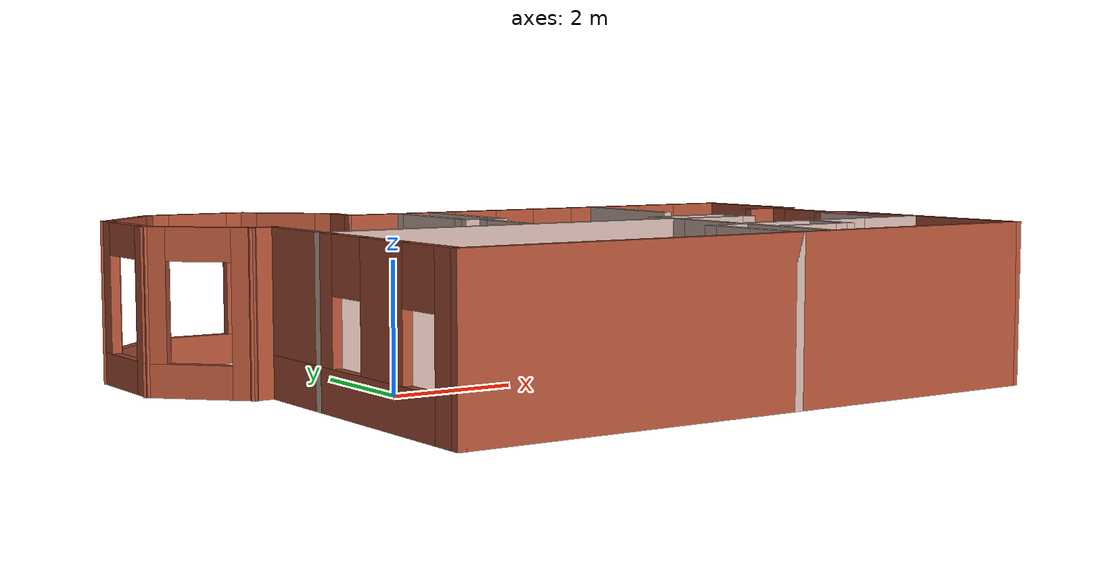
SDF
<?xml version='1.0'?>
<sdf version='1.6'>
  <model name='house'>
    <pose frame=''>2.68896 0.196904 0 0 -0 0</pose>
    <link name='Wall_0'>
      <collision name='Wall_0_Collision'>
        <geometry>
          <box>
            <size>10 0.15 2.5</size>
          </box>
        </geometry>
        <pose frame=''>0 0 1.25 0 -0 0</pose>
      </collision>
      <visual name='Wall_0_Visual'>
        <pose frame=''>0 0 1.25 0 -0 0</pose>
        <geometry>
          <box>
            <size>10 0.15 2.5</size>
          </box>
        </geometry>
        <material>
          <script>
            <uri>file://media/materials/scripts/gazebo.material</uri>
            <name>Gazebo/Bricks</name>
          </script>
          <ambient>1 1 1 1</ambient>
        </material>
        <meta>
          <layer>0</layer>
        </meta>
      </visual>
      <pose frame=''>0.726039 -4.4969 0 0 -0 0</pose>
    </link>
    <link name='Wall_1'>
      <collision name='Wall_1_Collision'>
        <geometry>
          <box>
            <size>3.75 0.15 2.5</size>
          </box>
        </geometry>
        <pose frame=''>0 0 1.25 0 -0 0</pose>
      </collision>
      <visual name='Wall_1_Visual'>
        <pose frame=''>0 0 1.25 0 -0 0</pose>
        <geometry>
          <box>
            <size>3.75 0.15 2.5</size>
          </box>
        </geometry>
        <material>
          <script>
            <uri>file://media/materials/scripts/gazebo.material</uri>
            <name>Gazebo/Bricks</name>
          </script>
          <ambient>1 1 1 1</ambient>
        </material>
        <meta>
          <layer>0</layer>
        </meta>
      </visual>
      <pose frame=''>5.65104 -2.6969 0 0 -0 1.5708</pose>
    </link>
    <link name='Wall_10'>
      <pose frame=''>1.96104 -2.4319 0 0 -0 1.5708</pose>
      <visual name='Wall_10_Visual_0'>
        <pose frame=''>-0.9125 0 1.25 0 -0 0</pose>
        <geometry>
          <box>
            <size>2.415 0.15 2.5</size>
          </box>
        </geometry>
        <material>
          <script>
            <uri>file://media/materials/scripts/gazebo.material</uri>
            <name>Gazebo/Grey</name>
          </script>
          <ambient>0.760784 0.662745 0.627451 1</ambient>
        </material>
        <meta>
          <layer>0</layer>
        </meta>
      </visual>
      <collision name='Wall_10_Collision_0'>
        <geometry>
          <box>
            <size>2.415 0.15 2.5</size>
          </box>
        </geometry>
        <pose frame=''>-0.9125 0 1.25 0 -0 0</pose>
      </collision>
      <visual name='Wall_10_Visual_1'>
        <pose frame=''>1.6575 0 1.25 0 -0 0</pose>
        <geometry>
          <box>
            <size>0.925 0.15 2.5</size>
          </box>
        </geometry>
        <material>
          <script>
            <uri>file://media/materials/scripts/gazebo.material</uri>
            <name>Gazebo/Grey</name>
          </script>
          <ambient>0.760784 0.662745 0.627451 1</ambient>
        </material>
        <meta>
          <layer>0</layer>
        </meta>
      </visual>
      <collision name='Wall_10_Collision_1'>
        <geometry>
          <box>
            <size>0.925 0.15 2.5</size>
          </box>
        </geometry>
        <pose frame=''>1.6575 0 1.25 0 -0 0</pose>
      </collision>
      <visual name='Wall_10_Visual_2'>
        <pose frame=''>0.745 0 2.25 0 -0 0</pose>
        <geometry>
          <box>
            <size>0.9 0.15 0.5</size>
          </box>
        </geometry>
        <material>
          <script>
            <uri>file://media/materials/scripts/gazebo.material</uri>
            <name>Gazebo/Grey</name>
          </script>
          <ambient>0.760784 0.662745 0.627451 1</ambient>
        </material>
        <meta>
          <layer>0</layer>
        </meta>
      </visual>
      <collision name='Wall_10_Collision_2'>
        <geometry>
          <box>
            <size>0.9 0.15 0.5</size>
          </box>
        </geometry>
        <pose frame=''>0.745 0 2.25 0 -0 0</pose>
      </collision>
    </link>
    <link name='Wall_12'>
      <collision name='Wall_12_Collision'>
        <geometry>
          <box>
            <size>0.74 0.15 2.5</size>
          </box>
        </geometry>
        <pose frame=''>0 0 1.25 0 -0 0</pose>
      </collision>
      <visual name='Wall_12_Visual'>
        <pose frame=''>0 0 1.25 0 -0 0</pose>
        <geometry>
          <box>
            <size>0.74 0.15 2.5</size>
          </box>
        </geometry>
        <material>
          <script>
            <uri>file://media/materials/scripts/gazebo.material</uri>
            <name>Gazebo/Grey</name>
          </script>
          <ambient>0.760784 0.662745 0.627451 1</ambient>
        </material>
        <meta>
          <layer>0</layer>
        </meta>
      </visual>
      <pose frame=''>3.40104 -0.681904 0 0 -0 -1.5708</pose>
    </link>
    <link name='Wall_13'>
      <pose frame=''>2.72604 -0.976904 0 0 -0 3.14159</pose>
      <visual name='Wall_13_Visual_0'>
        <pose frame=''>-0.625 0 1.25 0 -0 0</pose>
        <geometry>
          <box>
            <size>0.25 0.15 2.5</size>
          </box>
        </geometry>
        <material>
          <script>
            <uri>file://media/materials/scripts/gazebo.material</uri>
            <name>Gazebo/Grey</name>
          </script>
          <ambient>0.760784 0.662745 0.627451 1</ambient>
        </material>
        <meta>
          <layer>0</layer>
        </meta>
      </visual>
      <collision name='Wall_13_Collision_0'>
        <geometry>
          <box>
            <size>0.25 0.15 2.5</size>
          </box>
        </geometry>
        <pose frame=''>-0.625 0 1.25 0 -0 0</pose>
      </collision>
      <visual name='Wall_13_Visual_1'>
        <pose frame=''>0.655 0 1.25 0 -0 0</pose>
        <geometry>
          <box>
            <size>0.19 0.15 2.5</size>
          </box>
        </geometry>
        <material>
          <script>
            <uri>file://media/materials/scripts/gazebo.material</uri>
            <name>Gazebo/Grey</name>
          </script>
          <ambient>0.760784 0.662745 0.627451 1</ambient>
        </material>
        <meta>
          <layer>0</layer>
        </meta>
      </visual>
      <collision name='Wall_13_Collision_1'>
        <geometry>
          <box>
            <size>0.19 0.15 2.5</size>
          </box>
        </geometry>
        <pose frame=''>0.655 0 1.25 0 -0 0</pose>
      </collision>
      <visual name='Wall_13_Visual_2'>
        <pose frame=''>0.03 0 2.25 0 -0 0</pose>
        <geometry>
          <box>
            <size>1.06 0.15 0.5</size>
          </box>
        </geometry>
        <material>
          <script>
            <uri>file://media/materials/scripts/gazebo.material</uri>
            <name>Gazebo/Grey</name>
          </script>
          <ambient>0.760784 0.662745 0.627451 1</ambient>
        </material>
        <meta>
          <layer>0</layer>
        </meta>
      </visual>
      <collision name='Wall_13_Collision_2'>
        <geometry>
          <box>
            <size>1.06 0.15 0.5</size>
          </box>
        </geometry>
        <pose frame=''>0.03 0 2.25 0 -0 0</pose>
      </collision>
    </link>
    <link name='Wall_15'>
      <collision name='Wall_15_Collision'>
        <geometry>
          <box>
            <size>1.5 0.15 2.5</size>
          </box>
        </geometry>
        <pose frame=''>0 0 1.25 0 -0 0</pose>
      </collision>
      <visual name='Wall_15_Visual'>
        <pose frame=''>0 0 1.25 0 -0 0</pose>
        <geometry>
          <box>
            <size>1.5 0.15 2.5</size>
          </box>
        </geometry>
        <material>
          <script>
            <uri>file://media/materials/scripts/gazebo.material</uri>
            <name>Gazebo/Grey</name>
          </script>
          <ambient>0.760784 0.662745 0.627451 1</ambient>
        </material>
        <meta>
          <layer>0</layer>
        </meta>
      </visual>
      <pose frame=''>2.72604 -0.386904 0 0 -0 3.14159</pose>
    </link>
    <link name='Wall_17'>
      <collision name='Wall_17_Collision'>
        <geometry>
          <box>
            <size>0.960062 0.15 2.5</size>
          </box>
        </geometry>
        <pose frame=''>0 0 1.25 0 -0 0</pose>
      </collision>
      <visual name='Wall_17_Visual'>
        <pose frame=''>0 0 1.25 0 -0 0</pose>
        <geometry>
          <box>
            <size>0.960062 0.15 2.5</size>
          </box>
        </geometry>
        <material>
          <script>
            <uri>file://media/materials/scripts/gazebo.material</uri>
            <name>Gazebo/Grey</name>
          </script>
          <ambient>0.760784 0.662745 0.627451 1</ambient>
        </material>
        <meta>
          <layer>0</layer>
        </meta>
      </visual>
      <pose frame=''>3.37104 -2.8719 0 0 -0 -1.5708</pose>
    </link>
    <link name='Wall_18'>
      <pose frame=''>2.69604 -3.2769 0 0 -0 3.14159</pose>
      <visual name='Wall_18_Visual_0'>
        <pose frame=''>-0.5675 0 1.25 0 -0 0</pose>
        <geometry>
          <box>
            <size>0.365 0.15 2.5</size>
          </box>
        </geometry>
        <material>
          <script>
            <uri>file://media/materials/scripts/gazebo.material</uri>
            <name>Gazebo/Grey</name>
          </script>
          <ambient>0.760784 0.662745 0.627451 1</ambient>
        </material>
        <meta>
          <layer>0</layer>
        </meta>
      </visual>
      <collision name='Wall_18_Collision_0'>
        <geometry>
          <box>
            <size>0.365 0.15 2.5</size>
          </box>
        </geometry>
        <pose frame=''>-0.5675 0 1.25 0 -0 0</pose>
      </collision>
      <visual name='Wall_18_Visual_1'>
        <pose frame=''>0.6325 0 1.25 0 -0 0</pose>
        <geometry>
          <box>
            <size>0.235 0.15 2.5</size>
          </box>
        </geometry>
        <material>
          <script>
            <uri>file://media/materials/scripts/gazebo.material</uri>
            <name>Gazebo/Grey</name>
          </script>
          <ambient>0.760784 0.662745 0.627451 1</ambient>
        </material>
        <meta>
          <layer>0</layer>
        </meta>
      </visual>
      <collision name='Wall_18_Collision_1'>
        <geometry>
          <box>
            <size>0.235 0.15 2.5</size>
          </box>
        </geometry>
        <pose frame=''>0.6325 0 1.25 0 -0 0</pose>
      </collision>
      <visual name='Wall_18_Visual_2'>
        <pose frame=''>0.065 0 2.25 0 -0 0</pose>
        <geometry>
          <box>
            <size>0.9 0.15 0.5</size>
          </box>
        </geometry>
        <material>
          <script>
            <uri>file://media/materials/scripts/gazebo.material</uri>
            <name>Gazebo/Grey</name>
          </script>
          <ambient>0.760784 0.662745 0.627451 1</ambient>
        </material>
        <meta>
          <layer>0</layer>
        </meta>
      </visual>
      <collision name='Wall_18_Collision_2'>
        <geometry>
          <box>
            <size>0.9 0.15 0.5</size>
          </box>
        </geometry>
        <pose frame=''>0.065 0 2.25 0 -0 0</pose>
      </collision>
    </link>
    <link name='Wall_2'>
      <collision name='Wall_2_Collision'>
        <geometry>
          <box>
            <size>0.75 0.15 2.5</size>
          </box>
        </geometry>
        <pose frame=''>0 0 1.25 0 -0 0</pose>
      </collision>
      <visual name='Wall_2_Visual'>
        <pose frame=''>0 0 1.25 0 -0 0</pose>
        <geometry>
          <box>
            <size>0.75 0.15 2.5</size>
          </box>
        </geometry>
        <material>
          <script>
            <uri>file://media/materials/scripts/gazebo.material</uri>
            <name>Gazebo/Bricks</name>
          </script>
          <ambient>1 1 1 1</ambient>
        </material>
        <meta>
          <layer>0</layer>
        </meta>
      </visual>
      <pose frame=''>5.35104 -0.896904 0 0 -0 3.14159</pose>
    </link>
    <link name='Wall_20'>
      <pose frame=''>1.28104 -3.5719 0 0 -0 1.5708</pose>
      <visual name='Wall_20_Visual_0'>
        <pose frame=''>-0.85 0 1.25 0 -0 0</pose>
        <geometry>
          <box>
            <size>0.3 0.15 2.5</size>
          </box>
        </geometry>
        <material>
          <script>
            <uri>file://media/materials/scripts/gazebo.material</uri>
            <name>Gazebo/Grey</name>
          </script>
          <ambient>0.760784 0.662745 0.627451 1</ambient>
        </material>
        <meta>
          <layer>0</layer>
        </meta>
      </visual>
      <collision name='Wall_20_Collision_0'>
        <geometry>
          <box>
            <size>0.3 0.15 2.5</size>
          </box>
        </geometry>
        <pose frame=''>-0.85 0 1.25 0 -0 0</pose>
      </collision>
      <visual name='Wall_20_Visual_1'>
        <pose frame=''>0.87 0 1.25 0 -0 0</pose>
        <geometry>
          <box>
            <size>0.26 0.15 2.5</size>
          </box>
        </geometry>
        <material>
          <script>
            <uri>file://media/materials/scripts/gazebo.material</uri>
            <name>Gazebo/Grey</name>
          </script>
          <ambient>0.760784 0.662745 0.627451 1</ambient>
        </material>
        <meta>
          <layer>0</layer>
        </meta>
      </visual>
      <collision name='Wall_20_Collision_1'>
        <geometry>
          <box>
            <size>0.26 0.15 2.5</size>
          </box>
        </geometry>
        <pose frame=''>0.87 0 1.25 0 -0 0</pose>
      </collision>
      <visual name='Wall_20_Visual_2'>
        <pose frame=''>0.02 0 2.25 0 -0 0</pose>
        <geometry>
          <box>
            <size>1.44 0.15 0.5</size>
          </box>
        </geometry>
        <material>
          <script>
            <uri>file://media/materials/scripts/gazebo.material</uri>
            <name>Gazebo/Grey</name>
          </script>
          <ambient>0.760784 0.662745 0.627451 1</ambient>
        </material>
        <meta>
          <layer>0</layer>
        </meta>
      </visual>
      <collision name='Wall_20_Collision_2'>
        <geometry>
          <box>
            <size>1.44 0.15 0.5</size>
          </box>
        </geometry>
        <pose frame=''>0.02 0 2.25 0 -0 0</pose>
      </collision>
    </link>
    <link name='Wall_21'>
      <collision name='Wall_21_Collision'>
        <geometry>
          <box>
            <size>0.79 0.15 2.5</size>
          </box>
        </geometry>
        <pose frame=''>0 0 1.25 0 -0 0</pose>
      </collision>
      <visual name='Wall_21_Visual'>
        <pose frame=''>0 0 1.25 0 -0 0</pose>
        <geometry>
          <box>
            <size>0.79 0.15 2.5</size>
          </box>
        </geometry>
        <material>
          <script>
            <uri>file://media/materials/scripts/gazebo.material</uri>
            <name>Gazebo/Grey</name>
          </script>
          <ambient>0.760784 0.662745 0.627451 1</ambient>
        </material>
        <meta>
          <layer>0</layer>
        </meta>
      </visual>
      <pose frame=''>1.60104 -2.6469 0 0 -0 0</pose>
    </link>
    <link name='Wall_23'>
      <pose frame=''>-4.19896 -1.9469 0 0 -0 1.5708</pose>
      <visual name='Wall_23_Visual_0'>
        <pose frame=''>-2.3575 0 1.25 0 -0 0</pose>
        <geometry>
          <box>
            <size>0.535 0.15 2.5</size>
          </box>
        </geometry>
        <material>
          <script>
            <uri>file://media/materials/scripts/gazebo.material</uri>
            <name>Gazebo/Bricks</name>
          </script>
          <ambient>1 1 1 1</ambient>
        </material>
        <meta>
          <layer>0</layer>
        </meta>
      </visual>
      <collision name='Wall_23_Collision_0'>
        <geometry>
          <box>
            <size>0.535 0.15 2.5</size>
          </box>
        </geometry>
        <pose frame=''>-2.3575 0 1.25 0 -0 0</pose>
      </collision>
      <visual name='Wall_23_Visual_1'>
        <pose frame=''>0.2675 0 0.325 0 -0 0</pose>
        <geometry>
          <box>
            <size>4.715 0.15 0.65</size>
          </box>
        </geometry>
        <material>
          <script>
            <uri>file://media/materials/scripts/gazebo.material</uri>
            <name>Gazebo/Bricks</name>
          </script>
          <ambient>1 1 1 1</ambient>
        </material>
        <meta>
          <layer>0</layer>
        </meta>
      </visual>
      <collision name='Wall_23_Collision_1'>
        <geometry>
          <box>
            <size>4.715 0.15 0.65</size>
          </box>
        </geometry>
        <pose frame=''>0.2675 0 0.325 0 -0 0</pose>
      </collision>
      <visual name='Wall_23_Visual_2'>
        <pose frame=''>-0.73 0 1.575 0 -0 0</pose>
        <geometry>
          <box>
            <size>1.12 0.15 1.85</size>
          </box>
        </geometry>
        <material>
          <script>
            <uri>file://media/materials/scripts/gazebo.material</uri>
            <name>Gazebo/Bricks</name>
          </script>
          <ambient>1 1 1 1</ambient>
        </material>
        <meta>
          <layer>0</layer>
        </meta>
      </visual>
      <collision name='Wall_23_Collision_2'>
        <geometry>
          <box>
            <size>1.12 0.15 1.85</size>
          </box>
        </geometry>
        <pose frame=''>-0.73 0 1.575 0 -0 0</pose>
      </collision>
      <visual name='Wall_23_Visual_3'>
        <pose frame=''>1.6275 0 1.575 0 -0 0</pose>
        <geometry>
          <box>
            <size>1.995 0.15 1.85</size>
          </box>
        </geometry>
        <material>
          <script>
            <uri>file://media/materials/scripts/gazebo.material</uri>
            <name>Gazebo/Bricks</name>
          </script>
          <ambient>1 1 1 1</ambient>
        </material>
        <meta>
          <layer>0</layer>
        </meta>
      </visual>
      <collision name='Wall_23_Collision_3'>
        <geometry>
          <box>
            <size>1.995 0.15 1.85</size>
          </box>
        </geometry>
        <pose frame=''>1.6275 0 1.575 0 -0 0</pose>
      </collision>
      <visual name='Wall_23_Visual_4'>
        <pose frame=''>-1.69 0 2.075 0 -0 0</pose>
        <geometry>
          <box>
            <size>0.8 0.15 0.85</size>
          </box>
        </geometry>
        <material>
          <script>
            <uri>file://media/materials/scripts/gazebo.material</uri>
            <name>Gazebo/Bricks</name>
          </script>
          <ambient>1 1 1 1</ambient>
        </material>
        <meta>
          <layer>0</layer>
        </meta>
      </visual>
      <collision name='Wall_23_Collision_4'>
        <geometry>
          <box>
            <size>0.8 0.15 0.85</size>
          </box>
        </geometry>
        <pose frame=''>-1.69 0 2.075 0 -0 0</pose>
      </collision>
      <visual name='Wall_23_Visual_5'>
        <pose frame=''>0.23 0 2.075 0 -0 0</pose>
        <geometry>
          <box>
            <size>0.8 0.15 0.85</size>
          </box>
        </geometry>
        <material>
          <script>
            <uri>file://media/materials/scripts/gazebo.material</uri>
            <name>Gazebo/Bricks</name>
          </script>
          <ambient>1 1 1 1</ambient>
        </material>
        <meta>
          <layer>0</layer>
        </meta>
      </visual>
      <collision name='Wall_23_Collision_5'>
        <geometry>
          <box>
            <size>0.8 0.15 0.85</size>
          </box>
        </geometry>
        <pose frame=''>0.23 0 2.075 0 -0 0</pose>
      </collision>
    </link>
    <link name='Wall_24'>
      <collision name='Wall_24_Collision'>
        <geometry>
          <box>
            <size>0.5 0.15 2.5</size>
          </box>
        </geometry>
        <pose frame=''>0 0 1.25 0 -0 0</pose>
      </collision>
      <visual name='Wall_24_Visual'>
        <pose frame=''>0 0 1.25 0 -0 0</pose>
        <geometry>
          <box>
            <size>0.5 0.15 2.5</size>
          </box>
        </geometry>
        <material>
          <script>
            <uri>file://media/materials/scripts/gazebo.material</uri>
            <name>Gazebo/Bricks</name>
          </script>
          <ambient>1 1 1 1</ambient>
        </material>
        <meta>
          <layer>0</layer>
        </meta>
      </visual>
      <pose frame=''>-4.37396 0.603096 0 0 -0 3.14159</pose>
    </link>
    <link name='Wall_25'>
      <pose frame=''>-5.11465 1.16878 0 0 -0 2.35619</pose>
      <visual name='Wall_25_Visual_0'>
        <pose frame=''>-0.687985 0 1.25 0 -0 0</pose>
        <geometry>
          <box>
            <size>0.374031 0.15 2.5</size>
          </box>
        </geometry>
        <material>
          <script>
            <uri>file://media/materials/scripts/gazebo.material</uri>
            <name>Gazebo/Bricks</name>
          </script>
          <ambient>1 1 1 1</ambient>
        </material>
        <meta>
          <layer>0</layer>
        </meta>
      </visual>
      <collision name='Wall_25_Collision_0'>
        <geometry>
          <box>
            <size>0.374031 0.15 2.5</size>
          </box>
        </geometry>
        <pose frame=''>-0.687985 0 1.25 0 -0 0</pose>
      </collision>
      <visual name='Wall_25_Visual_1'>
        <pose frame=''>0.187015 0 0.25 0 -0 0</pose>
        <geometry>
          <box>
            <size>1.37597 0.15 0.5</size>
          </box>
        </geometry>
        <material>
          <script>
            <uri>file://media/materials/scripts/gazebo.material</uri>
            <name>Gazebo/Bricks</name>
          </script>
          <ambient>1 1 1 1</ambient>
        </material>
        <meta>
          <layer>0</layer>
        </meta>
      </visual>
      <collision name='Wall_25_Collision_1'>
        <geometry>
          <box>
            <size>1.37597 0.15 0.5</size>
          </box>
        </geometry>
        <pose frame=''>0.187015 0 0.25 0 -0 0</pose>
      </collision>
      <visual name='Wall_25_Visual_2'>
        <pose frame=''>0.687015 0 1.5 0 -0 0</pose>
        <geometry>
          <box>
            <size>0.375969 0.15 2</size>
          </box>
        </geometry>
        <material>
          <script>
            <uri>file://media/materials/scripts/gazebo.material</uri>
            <name>Gazebo/Bricks</name>
          </script>
          <ambient>1 1 1 1</ambient>
        </material>
        <meta>
          <layer>0</layer>
        </meta>
      </visual>
      <collision name='Wall_25_Collision_2'>
        <geometry>
          <box>
            <size>0.375969 0.15 2</size>
          </box>
        </geometry>
        <pose frame=''>0.687015 0 1.5 0 -0 0</pose>
      </collision>
      <visual name='Wall_25_Visual_3'>
        <pose frame=''>-0.000969 0 2.25 0 -0 0</pose>
        <geometry>
          <box>
            <size>1 0.15 0.5</size>
          </box>
        </geometry>
        <material>
          <script>
            <uri>file://media/materials/scripts/gazebo.material</uri>
            <name>Gazebo/Bricks</name>
          </script>
          <ambient>1 1 1 1</ambient>
        </material>
        <meta>
          <layer>0</layer>
        </meta>
      </visual>
      <collision name='Wall_25_Collision_3'>
        <geometry>
          <box>
            <size>1 0.15 0.5</size>
          </box>
        </geometry>
        <pose frame=''>-0.000969 0 2.25 0 -0 0</pose>
      </collision>
    </link>
    <link name='Wall_26'>
      <pose frame=''>-5.68033 2.53447 0 0 -0 1.5708</pose>
      <visual name='Wall_26_Visual_0'>
        <pose frame=''>-0.688185 0 1.25 0 -0 0</pose>
        <geometry>
          <box>
            <size>0.373629 0.15 2.5</size>
          </box>
        </geometry>
        <material>
          <script>
            <uri>file://media/materials/scripts/gazebo.material</uri>
            <name>Gazebo/Bricks</name>
          </script>
          <ambient>1 1 1 1</ambient>
        </material>
        <meta>
          <layer>0</layer>
        </meta>
      </visual>
      <collision name='Wall_26_Collision_0'>
        <geometry>
          <box>
            <size>0.373629 0.15 2.5</size>
          </box>
        </geometry>
        <pose frame=''>-0.688185 0 1.25 0 -0 0</pose>
      </collision>
      <visual name='Wall_26_Visual_1'>
        <pose frame=''>0.186815 0 0.25 0 -0 0</pose>
        <geometry>
          <box>
            <size>1.37637 0.15 0.5</size>
          </box>
        </geometry>
        <material>
          <script>
            <uri>file://media/materials/scripts/gazebo.material</uri>
            <name>Gazebo/Bricks</name>
          </script>
          <ambient>1 1 1 1</ambient>
        </material>
        <meta>
          <layer>0</layer>
        </meta>
      </visual>
      <collision name='Wall_26_Collision_1'>
        <geometry>
          <box>
            <size>1.37637 0.15 0.5</size>
          </box>
        </geometry>
        <pose frame=''>0.186815 0 0.25 0 -0 0</pose>
      </collision>
      <visual name='Wall_26_Visual_2'>
        <pose frame=''>0.686815 0 1.5 0 -0 0</pose>
        <geometry>
          <box>
            <size>0.376371 0.15 2</size>
          </box>
        </geometry>
        <material>
          <script>
            <uri>file://media/materials/scripts/gazebo.material</uri>
            <name>Gazebo/Bricks</name>
          </script>
          <ambient>1 1 1 1</ambient>
        </material>
        <meta>
          <layer>0</layer>
        </meta>
      </visual>
      <collision name='Wall_26_Collision_2'>
        <geometry>
          <box>
            <size>0.376371 0.15 2</size>
          </box>
        </geometry>
        <pose frame=''>0.686815 0 1.5 0 -0 0</pose>
      </collision>
      <visual name='Wall_26_Visual_3'>
        <pose frame=''>-0.001371 0 2.25 0 -0 0</pose>
        <geometry>
          <box>
            <size>1 0.15 0.5</size>
          </box>
        </geometry>
        <material>
          <script>
            <uri>file://media/materials/scripts/gazebo.material</uri>
            <name>Gazebo/Bricks</name>
          </script>
          <ambient>1 1 1 1</ambient>
        </material>
        <meta>
          <layer>0</layer>
        </meta>
      </visual>
      <collision name='Wall_26_Collision_3'>
        <geometry>
          <box>
            <size>1 0.15 0.5</size>
          </box>
        </geometry>
        <pose frame=''>-0.001371 0 2.25 0 -0 0</pose>
      </collision>
    </link>
    <link name='Wall_27'>
      <pose frame=''>-5.11465 3.90015 0 0 -0 0.785398</pose>
      <visual name='Wall_27_Visual_0'>
        <pose frame=''>-0.687985 0 1.25 0 -0 0</pose>
        <geometry>
          <box>
            <size>0.37403 0.15 2.5</size>
          </box>
        </geometry>
        <material>
          <script>
            <uri>file://media/materials/scripts/gazebo.material</uri>
            <name>Gazebo/Bricks</name>
          </script>
          <ambient>1 1 1 1</ambient>
        </material>
        <meta>
          <layer>0</layer>
        </meta>
      </visual>
      <collision name='Wall_27_Collision_0'>
        <geometry>
          <box>
            <size>0.37403 0.15 2.5</size>
          </box>
        </geometry>
        <pose frame=''>-0.687985 0 1.25 0 -0 0</pose>
      </collision>
      <visual name='Wall_27_Visual_1'>
        <pose frame=''>0.187015 0 0.25 0 -0 0</pose>
        <geometry>
          <box>
            <size>1.37597 0.15 0.5</size>
          </box>
        </geometry>
        <material>
          <script>
            <uri>file://media/materials/scripts/gazebo.material</uri>
            <name>Gazebo/Bricks</name>
          </script>
          <ambient>1 1 1 1</ambient>
        </material>
        <meta>
          <layer>0</layer>
        </meta>
      </visual>
      <collision name='Wall_27_Collision_1'>
        <geometry>
          <box>
            <size>1.37597 0.15 0.5</size>
          </box>
        </geometry>
        <pose frame=''>0.187015 0 0.25 0 -0 0</pose>
      </collision>
      <visual name='Wall_27_Visual_2'>
        <pose frame=''>0.687015 0 1.5 0 -0 0</pose>
        <geometry>
          <box>
            <size>0.37597 0.15 2</size>
          </box>
        </geometry>
        <material>
          <script>
            <uri>file://media/materials/scripts/gazebo.material</uri>
            <name>Gazebo/Bricks</name>
          </script>
          <ambient>1 1 1 1</ambient>
        </material>
        <meta>
          <layer>0</layer>
        </meta>
      </visual>
      <collision name='Wall_27_Collision_2'>
        <geometry>
          <box>
            <size>0.37597 0.15 2</size>
          </box>
        </geometry>
        <pose frame=''>0.687015 0 1.5 0 -0 0</pose>
      </collision>
      <visual name='Wall_27_Visual_3'>
        <pose frame=''>-0.00097 0 2.25 0 -0 0</pose>
        <geometry>
          <box>
            <size>1 0.15 0.5</size>
          </box>
        </geometry>
        <material>
          <script>
            <uri>file://media/materials/scripts/gazebo.material</uri>
            <name>Gazebo/Bricks</name>
          </script>
          <ambient>1 1 1 1</ambient>
        </material>
        <meta>
          <layer>0</layer>
        </meta>
      </visual>
      <collision name='Wall_27_Collision_3'>
        <geometry>
          <box>
            <size>1 0.15 0.5</size>
          </box>
        </geometry>
        <pose frame=''>-0.00097 0 2.25 0 -0 0</pose>
      </collision>
    </link>
    <link name='Wall_28'>
      <pose frame=''>-3.74896 4.46584 0 0 -0 0</pose>
      <visual name='Wall_28_Visual_0'>
        <pose frame=''>-0.6875 0 1.25 0 -0 0</pose>
        <geometry>
          <box>
            <size>0.375 0.15 2.5</size>
          </box>
        </geometry>
        <material>
          <script>
            <uri>file://media/materials/scripts/gazebo.material</uri>
            <name>Gazebo/Bricks</name>
          </script>
          <ambient>1 1 1 1</ambient>
        </material>
        <meta>
          <layer>0</layer>
        </meta>
      </visual>
      <collision name='Wall_28_Collision_0'>
        <geometry>
          <box>
            <size>0.375 0.15 2.5</size>
          </box>
        </geometry>
        <pose frame=''>-0.6875 0 1.25 0 -0 0</pose>
      </collision>
      <visual name='Wall_28_Visual_1'>
        <pose frame=''>0.1875 0 0.25 0 -0 0</pose>
        <geometry>
          <box>
            <size>1.375 0.15 0.5</size>
          </box>
        </geometry>
        <material>
          <script>
            <uri>file://media/materials/scripts/gazebo.material</uri>
            <name>Gazebo/Bricks</name>
          </script>
          <ambient>1 1 1 1</ambient>
        </material>
        <meta>
          <layer>0</layer>
        </meta>
      </visual>
      <collision name='Wall_28_Collision_1'>
        <geometry>
          <box>
            <size>1.375 0.15 0.5</size>
          </box>
        </geometry>
        <pose frame=''>0.1875 0 0.25 0 -0 0</pose>
      </collision>
      <visual name='Wall_28_Visual_2'>
        <pose frame=''>0.6875 0 1.5 0 -0 0</pose>
        <geometry>
          <box>
            <size>0.375 0.15 2</size>
          </box>
        </geometry>
        <material>
          <script>
            <uri>file://media/materials/scripts/gazebo.material</uri>
            <name>Gazebo/Bricks</name>
          </script>
          <ambient>1 1 1 1</ambient>
        </material>
        <meta>
          <layer>0</layer>
        </meta>
      </visual>
      <collision name='Wall_28_Collision_2'>
        <geometry>
          <box>
            <size>0.375 0.15 2</size>
          </box>
        </geometry>
        <pose frame=''>0.6875 0 1.5 0 -0 0</pose>
      </collision>
      <visual name='Wall_28_Visual_3'>
        <pose frame=''>0 0 2.25 0 -0 0</pose>
        <geometry>
          <box>
            <size>1 0.15 0.5</size>
          </box>
        </geometry>
        <material>
          <script>
            <uri>file://media/materials/scripts/gazebo.material</uri>
            <name>Gazebo/Bricks</name>
          </script>
          <ambient>1 1 1 1</ambient>
        </material>
        <meta>
          <layer>0</layer>
        </meta>
      </visual>
      <collision name='Wall_28_Collision_3'>
        <geometry>
          <box>
            <size>1 0.15 0.5</size>
          </box>
        </geometry>
        <pose frame=''>0 0 2.25 0 -0 0</pose>
      </collision>
    </link>
    <link name='Wall_29'>
      <pose frame=''>-2.38327 3.90015 0 0 -0 -0.785398</pose>
      <visual name='Wall_29_Visual_0'>
        <pose frame=''>-0.687015 0 1.25 0 -0 0</pose>
        <geometry>
          <box>
            <size>0.37597 0.15 2.5</size>
          </box>
        </geometry>
        <material>
          <script>
            <uri>file://media/materials/scripts/gazebo.material</uri>
            <name>Gazebo/Bricks</name>
          </script>
          <ambient>1 1 1 1</ambient>
        </material>
        <meta>
          <layer>0</layer>
        </meta>
      </visual>
      <collision name='Wall_29_Collision_0'>
        <geometry>
          <box>
            <size>0.37597 0.15 2.5</size>
          </box>
        </geometry>
        <pose frame=''>-0.687015 0 1.25 0 -0 0</pose>
      </collision>
      <visual name='Wall_29_Visual_1'>
        <pose frame=''>0.187985 0 0.25 0 -0 0</pose>
        <geometry>
          <box>
            <size>1.37403 0.15 0.5</size>
          </box>
        </geometry>
        <material>
          <script>
            <uri>file://media/materials/scripts/gazebo.material</uri>
            <name>Gazebo/Bricks</name>
          </script>
          <ambient>1 1 1 1</ambient>
        </material>
        <meta>
          <layer>0</layer>
        </meta>
      </visual>
      <collision name='Wall_29_Collision_1'>
        <geometry>
          <box>
            <size>1.37403 0.15 0.5</size>
          </box>
        </geometry>
        <pose frame=''>0.187985 0 0.25 0 -0 0</pose>
      </collision>
      <visual name='Wall_29_Visual_2'>
        <pose frame=''>0.687985 0 1.5 0 -0 0</pose>
        <geometry>
          <box>
            <size>0.37403 0.15 2</size>
          </box>
        </geometry>
        <material>
          <script>
            <uri>file://media/materials/scripts/gazebo.material</uri>
            <name>Gazebo/Bricks</name>
          </script>
          <ambient>1 1 1 1</ambient>
        </material>
        <meta>
          <layer>0</layer>
        </meta>
      </visual>
      <collision name='Wall_29_Collision_2'>
        <geometry>
          <box>
            <size>0.37403 0.15 2</size>
          </box>
        </geometry>
        <pose frame=''>0.687985 0 1.5 0 -0 0</pose>
      </collision>
      <visual name='Wall_29_Visual_3'>
        <pose frame=''>0.00097 0 2.25 0 -0 0</pose>
        <geometry>
          <box>
            <size>1 0.15 0.5</size>
          </box>
        </geometry>
        <material>
          <script>
            <uri>file://media/materials/scripts/gazebo.material</uri>
            <name>Gazebo/Bricks</name>
          </script>
          <ambient>1 1 1 1</ambient>
        </material>
        <meta>
          <layer>0</layer>
        </meta>
      </visual>
      <collision name='Wall_29_Collision_3'>
        <geometry>
          <box>
            <size>1 0.15 0.5</size>
          </box>
        </geometry>
        <pose frame=''>0.00097 0 2.25 0 -0 0</pose>
      </collision>
    </link>
    <link name='Wall_3'>
      <collision name='Wall_3_Collision'>
        <geometry>
          <box>
            <size>1.71 0.15 2.5</size>
          </box>
        </geometry>
        <pose frame=''>0 0 1.25 0 -0 0</pose>
      </collision>
      <visual name='Wall_3_Visual'>
        <pose frame=''>0 0 1.25 0 -0 0</pose>
        <geometry>
          <box>
            <size>1.71 0.15 2.5</size>
          </box>
        </geometry>
        <material>
          <script>
            <uri>file://media/materials/scripts/gazebo.material</uri>
            <name>Gazebo/Grey</name>
          </script>
          <ambient>0.760784 0.662745 0.627451 1</ambient>
        </material>
        <meta>
          <layer>0</layer>
        </meta>
      </visual>
      <pose frame=''>5.05104 -1.6769 0 0 -0 -1.5708</pose>
    </link>
    <link name='Wall_30'>
      <collision name='Wall_30_Collision'>
        <geometry>
          <box>
            <size>0.75 0.15 2.5</size>
          </box>
        </geometry>
        <pose frame=''>0 0 1.25 0 -0 0</pose>
      </collision>
      <visual name='Wall_30_Visual'>
        <pose frame=''>0 0 1.25 0 -0 0</pose>
        <geometry>
          <box>
            <size>0.75 0.15 2.5</size>
          </box>
        </geometry>
        <material>
          <script>
            <uri>file://media/materials/scripts/gazebo.material</uri>
            <name>Gazebo/Bricks</name>
          </script>
          <ambient>1 1 1 1</ambient>
        </material>
        <meta>
          <layer>0</layer>
        </meta>
      </visual>
      <pose frame=''>-1.81759 3.03447 0 0 -0 -1.5708</pose>
    </link>
    <link name='Wall_31'>
      <pose frame=''>1.94172 2.73378 0 0 -0 -0.000182</pose>
      <visual name='Wall_31_Visual_0'>
        <pose frame=''>-2.83251 0 1.25 0 -0 0</pose>
        <geometry>
          <box>
            <size>2.00364 0.15 2.5</size>
          </box>
        </geometry>
        <material>
          <script>
            <uri>file://media/materials/scripts/gazebo.material</uri>
            <name>Gazebo/Bricks</name>
          </script>
          <ambient>1 1 1 1</ambient>
        </material>
        <meta>
          <layer>0</layer>
        </meta>
      </visual>
      <collision name='Wall_31_Collision_0'>
        <geometry>
          <box>
            <size>2.00364 0.15 2.5</size>
          </box>
        </geometry>
        <pose frame=''>-2.83251 0 1.25 0 -0 0</pose>
      </collision>
      <visual name='Wall_31_Visual_1'>
        <pose frame=''>1.00182 0 0.325 0 -0 0</pose>
        <geometry>
          <box>
            <size>5.66502 0.15 0.65</size>
          </box>
        </geometry>
        <material>
          <script>
            <uri>file://media/materials/scripts/gazebo.material</uri>
            <name>Gazebo/Bricks</name>
          </script>
          <ambient>1 1 1 1</ambient>
        </material>
        <meta>
          <layer>0</layer>
        </meta>
      </visual>
      <collision name='Wall_31_Collision_1'>
        <geometry>
          <box>
            <size>5.66502 0.15 0.65</size>
          </box>
        </geometry>
        <pose frame=''>1.00182 0 0.325 0 -0 0</pose>
      </collision>
      <visual name='Wall_31_Visual_2'>
        <pose frame=''>-0.650687 0 1.575 0 -0 0</pose>
        <geometry>
          <box>
            <size>0.760004 0.15 1.85</size>
          </box>
        </geometry>
        <material>
          <script>
            <uri>file://media/materials/scripts/gazebo.material</uri>
            <name>Gazebo/Bricks</name>
          </script>
          <ambient>1 1 1 1</ambient>
        </material>
        <meta>
          <layer>0</layer>
        </meta>
      </visual>
      <collision name='Wall_31_Collision_2'>
        <geometry>
          <box>
            <size>0.760004 0.15 1.85</size>
          </box>
        </geometry>
        <pose frame=''>-0.650687 0 1.575 0 -0 0</pose>
      </collision>
      <visual name='Wall_31_Visual_3'>
        <pose frame=''>1.25932 0 1.575 0 -0 0</pose>
        <geometry>
          <box>
            <size>1.46 0.15 1.85</size>
          </box>
        </geometry>
        <material>
          <script>
            <uri>file://media/materials/scripts/gazebo.material</uri>
            <name>Gazebo/Bricks</name>
          </script>
          <ambient>1 1 1 1</ambient>
        </material>
        <meta>
          <layer>0</layer>
        </meta>
      </visual>
      <collision name='Wall_31_Collision_3'>
        <geometry>
          <box>
            <size>1.46 0.15 1.85</size>
          </box>
        </geometry>
        <pose frame=''>1.25932 0 1.575 0 -0 0</pose>
      </collision>
      <visual name='Wall_31_Visual_4'>
        <pose frame=''>3.31182 0 1.575 0 -0 0</pose>
        <geometry>
          <box>
            <size>1.04501 0.15 1.85</size>
          </box>
        </geometry>
        <material>
          <script>
            <uri>file://media/materials/scripts/gazebo.material</uri>
            <name>Gazebo/Bricks</name>
          </script>
          <ambient>1 1 1 1</ambient>
        </material>
        <meta>
          <layer>0</layer>
        </meta>
      </visual>
      <collision name='Wall_31_Collision_4'>
        <geometry>
          <box>
            <size>1.04501 0.15 1.85</size>
          </box>
        </geometry>
        <pose frame=''>3.31182 0 1.575 0 -0 0</pose>
      </collision>
      <visual name='Wall_31_Visual_5'>
        <pose frame=''>-1.43069 0 2.075 0 -0 0</pose>
        <geometry>
          <box>
            <size>0.8 0.15 0.85</size>
          </box>
        </geometry>
        <material>
          <script>
            <uri>file://media/materials/scripts/gazebo.material</uri>
            <name>Gazebo/Bricks</name>
          </script>
          <ambient>1 1 1 1</ambient>
        </material>
        <meta>
          <layer>0</layer>
        </meta>
      </visual>
      <collision name='Wall_31_Collision_5'>
        <geometry>
          <box>
            <size>0.8 0.15 0.85</size>
          </box>
        </geometry>
        <pose frame=''>-1.43069 0 2.075 0 -0 0</pose>
      </collision>
      <visual name='Wall_31_Visual_6'>
        <pose frame=''>0.129315 0 2.075 0 -0 0</pose>
        <geometry>
          <box>
            <size>0.8 0.15 0.85</size>
          </box>
        </geometry>
        <material>
          <script>
            <uri>file://media/materials/scripts/gazebo.material</uri>
            <name>Gazebo/Bricks</name>
          </script>
          <ambient>1 1 1 1</ambient>
        </material>
        <meta>
          <layer>0</layer>
        </meta>
      </visual>
      <collision name='Wall_31_Collision_6'>
        <geometry>
          <box>
            <size>0.8 0.15 0.85</size>
          </box>
        </geometry>
        <pose frame=''>0.129315 0 2.075 0 -0 0</pose>
      </collision>
      <visual name='Wall_31_Visual_7'>
        <pose frame=''>2.38932 0 2.075 0 -0 0</pose>
        <geometry>
          <box>
            <size>0.8 0.15 0.85</size>
          </box>
        </geometry>
        <material>
          <script>
            <uri>file://media/materials/scripts/gazebo.material</uri>
            <name>Gazebo/Bricks</name>
          </script>
          <ambient>1 1 1 1</ambient>
        </material>
        <meta>
          <layer>0</layer>
        </meta>
      </visual>
      <collision name='Wall_31_Collision_7'>
        <geometry>
          <box>
            <size>0.8 0.15 0.85</size>
          </box>
        </geometry>
        <pose frame=''>2.38932 0 2.075 0 -0 0</pose>
      </collision>
    </link>
    <link name='Wall_32'>
      <collision name='Wall_32_Collision'>
        <geometry>
          <box>
            <size>2.2401 0.15 2.5</size>
          </box>
        </geometry>
        <pose frame=''>0 0 1.25 0 -0 0</pose>
      </collision>
      <visual name='Wall_32_Visual'>
        <pose frame=''>0 0 1.25 0 -0 0</pose>
        <geometry>
          <box>
            <size>2.2401 0.15 2.5</size>
          </box>
        </geometry>
        <material>
          <script>
            <uri>file://media/materials/scripts/gazebo.material</uri>
            <name>Gazebo/Bricks</name>
          </script>
          <ambient>1 1 1 1</ambient>
        </material>
        <meta>
          <layer>0</layer>
        </meta>
      </visual>
      <pose frame=''>5.70604 1.6881 0 0 -0 -1.56601</pose>
    </link>
    <link name='Wall_33'>
      <collision name='Wall_33_Collision'>
        <geometry>
          <box>
            <size>1 0.15 2.5</size>
          </box>
        </geometry>
        <pose frame=''>0 0 1.25 0 -0 0</pose>
      </collision>
      <visual name='Wall_33_Visual'>
        <pose frame=''>0 0 1.25 0 -0 0</pose>
        <geometry>
          <box>
            <size>1 0.15 2.5</size>
          </box>
        </geometry>
        <material>
          <script>
            <uri>file://media/materials/scripts/gazebo.material</uri>
            <name>Gazebo/Bricks</name>
          </script>
          <ambient>1 1 1 1</ambient>
        </material>
        <meta>
          <layer>0</layer>
        </meta>
      </visual>
      <pose frame=''>5.28604 0.643096 0 0 -0 3.14159</pose>
    </link>
    <link name='Wall_35'>
      <collision name='Wall_35_Collision'>
        <geometry>
          <box>
            <size>6.22001 0.15 2.5</size>
          </box>
        </geometry>
        <pose frame=''>0 0 1.25 0 -0 0</pose>
      </collision>
      <visual name='Wall_35_Visual'>
        <pose frame=''>0 0 1.25 0 -0 0</pose>
        <geometry>
          <box>
            <size>6.22001 0.15 2.5</size>
          </box>
        </geometry>
        <material>
          <script>
            <uri>file://media/materials/scripts/gazebo.material</uri>
            <name>Gazebo/Grey</name>
          </script>
          <ambient>0.760784 0.662745 0.627451 1</ambient>
        </material>
        <meta>
          <layer>0</layer>
        </meta>
      </visual>
      <pose frame=''>-1.16396 -0.886904 0 0 -0 0</pose>
    </link>
    <link name='Wall_37'>
      <collision name='Wall_37_Collision'>
        <geometry>
          <box>
            <size>2.25 0.15 2.5</size>
          </box>
        </geometry>
        <pose frame=''>0 0 1.25 0 -0 0</pose>
      </collision>
      <visual name='Wall_37_Visual'>
        <pose frame=''>0 0 1.25 0 -0 0</pose>
        <geometry>
          <box>
            <size>2.25 0.15 2.5</size>
          </box>
        </geometry>
        <material>
          <script>
            <uri>file://media/materials/scripts/gazebo.material</uri>
            <name>Gazebo/Grey</name>
          </script>
          <ambient>0.760784 0.662745 0.627451 1</ambient>
        </material>
        <meta>
          <layer>0</layer>
        </meta>
      </visual>
      <pose frame=''>-0.308961 1.6631 0 0 -0 -1.5708</pose>
    </link>
    <link name='Wall_38'>
      <collision name='Wall_38_Collision'>
        <geometry>
          <box>
            <size>0.75 0.15 2.5</size>
          </box>
        </geometry>
        <pose frame=''>0 0 1.25 0 -0 0</pose>
      </collision>
      <visual name='Wall_38_Visual'>
        <pose frame=''>0 0 1.25 0 -0 0</pose>
        <geometry>
          <box>
            <size>0.75 0.15 2.5</size>
          </box>
        </geometry>
        <material>
          <script>
            <uri>file://media/materials/scripts/gazebo.material</uri>
            <name>Gazebo/Grey</name>
          </script>
          <ambient>0.760784 0.662745 0.627451 1</ambient>
        </material>
        <meta>
          <layer>0</layer>
        </meta>
      </visual>
      <pose frame=''>-0.608961 0.613096 0 0 -0 3.14159</pose>
    </link>
    <link name='Wall_39'>
      <pose frame=''>-0.908961 1.6631 0 0 -0 1.5708</pose>
      <visual name='Wall_39_Visual_0'>
        <pose frame=''>-0.95 0 1.25 0 -0 0</pose>
        <geometry>
          <box>
            <size>0.35 0.15 2.5</size>
          </box>
        </geometry>
        <material>
          <script>
            <uri>file://media/materials/scripts/gazebo.material</uri>
            <name>Gazebo/Grey</name>
          </script>
          <ambient>0.760784 0.662745 0.627451 1</ambient>
        </material>
        <meta>
          <layer>0</layer>
        </meta>
      </visual>
      <collision name='Wall_39_Collision_0'>
        <geometry>
          <box>
            <size>0.35 0.15 2.5</size>
          </box>
        </geometry>
        <pose frame=''>-0.95 0 1.25 0 -0 0</pose>
      </collision>
      <visual name='Wall_39_Visual_1'>
        <pose frame=''>0.975 0 1.25 0 -0 0</pose>
        <geometry>
          <box>
            <size>0.3 0.15 2.5</size>
          </box>
        </geometry>
        <material>
          <script>
            <uri>file://media/materials/scripts/gazebo.material</uri>
            <name>Gazebo/Grey</name>
          </script>
          <ambient>0.760784 0.662745 0.627451 1</ambient>
        </material>
        <meta>
          <layer>0</layer>
        </meta>
      </visual>
      <collision name='Wall_39_Collision_1'>
        <geometry>
          <box>
            <size>0.3 0.15 2.5</size>
          </box>
        </geometry>
        <pose frame=''>0.975 0 1.25 0 -0 0</pose>
      </collision>
      <visual name='Wall_39_Visual_2'>
        <pose frame=''>0.025 0 2.25 0 -0 0</pose>
        <geometry>
          <box>
            <size>1.6 0.15 0.5</size>
          </box>
        </geometry>
        <material>
          <script>
            <uri>file://media/materials/scripts/gazebo.material</uri>
            <name>Gazebo/Grey</name>
          </script>
          <ambient>0.760784 0.662745 0.627451 1</ambient>
        </material>
        <meta>
          <layer>0</layer>
        </meta>
      </visual>
      <collision name='Wall_39_Collision_2'>
        <geometry>
          <box>
            <size>1.6 0.15 0.5</size>
          </box>
        </geometry>
        <pose frame=''>0.025 0 2.25 0 -0 0</pose>
      </collision>
    </link>
    <link name='Wall_41'>
      <pose frame=''>-0.668961 -0.101904 0 0 -0 -1.5708</pose>
      <visual name='Wall_41_Visual_0'>
        <pose frame=''>-0.5975 0 1.25 0 -0 0</pose>
        <geometry>
          <box>
            <size>0.345 0.15 2.5</size>
          </box>
        </geometry>
        <material>
          <script>
            <uri>file://media/materials/scripts/gazebo.material</uri>
            <name>Gazebo/Grey</name>
          </script>
          <ambient>0.760784 0.662745 0.627451 1</ambient>
        </material>
        <meta>
          <layer>0</layer>
        </meta>
      </visual>
      <collision name='Wall_41_Collision_0'>
        <geometry>
          <box>
            <size>0.345 0.15 2.5</size>
          </box>
        </geometry>
        <pose frame=''>-0.5975 0 1.25 0 -0 0</pose>
      </collision>
      <visual name='Wall_41_Visual_1'>
        <pose frame=''>0.6225 0 1.25 0 -0 0</pose>
        <geometry>
          <box>
            <size>0.295 0.15 2.5</size>
          </box>
        </geometry>
        <material>
          <script>
            <uri>file://media/materials/scripts/gazebo.material</uri>
            <name>Gazebo/Grey</name>
          </script>
          <ambient>0.760784 0.662745 0.627451 1</ambient>
        </material>
        <meta>
          <layer>0</layer>
        </meta>
      </visual>
      <collision name='Wall_41_Collision_1'>
        <geometry>
          <box>
            <size>0.295 0.15 2.5</size>
          </box>
        </geometry>
        <pose frame=''>0.6225 0 1.25 0 -0 0</pose>
      </collision>
      <visual name='Wall_41_Visual_2'>
        <pose frame=''>0.025 0 2.25 0 -0 0</pose>
        <geometry>
          <box>
            <size>0.9 0.15 0.5</size>
          </box>
        </geometry>
        <material>
          <script>
            <uri>file://media/materials/scripts/gazebo.material</uri>
            <name>Gazebo/Grey</name>
          </script>
          <ambient>0.760784 0.662745 0.627451 1</ambient>
        </material>
        <meta>
          <layer>0</layer>
        </meta>
      </visual>
      <collision name='Wall_41_Collision_2'>
        <geometry>
          <box>
            <size>0.9 0.15 0.5</size>
          </box>
        </geometry>
        <pose frame=''>0.025 0 2.25 0 -0 0</pose>
      </collision>
    </link>
    <link name='Wall_45'>
      <collision name='Wall_45_Collision'>
        <geometry>
          <box>
            <size>2.25 0.15 2.5</size>
          </box>
        </geometry>
        <pose frame=''>0 0 1.25 0 -0 0</pose>
      </collision>
      <visual name='Wall_45_Visual'>
        <pose frame=''>0 0 1.25 0 -0 0</pose>
        <geometry>
          <box>
            <size>2.25 0.15 2.5</size>
          </box>
        </geometry>
        <material>
          <script>
            <uri>file://media/materials/scripts/gazebo.material</uri>
            <name>Gazebo/Grey</name>
          </script>
          <ambient>0.760784 0.662745 0.627451 1</ambient>
        </material>
        <meta>
          <layer>0</layer>
        </meta>
      </visual>
      <pose frame=''>2.97104 1.6931 0 0 -0 -1.5708</pose>
    </link>
    <link name='Wall_47'>
      <pose frame=''>5.36104 -0.106904 0 0 -0 -1.5708</pose>
      <visual name='Wall_47_Visual_0'>
        <pose frame=''>-0.602533 0 1.25 0 -0 0</pose>
        <geometry>
          <box>
            <size>0.445067 0.15 2.5</size>
          </box>
        </geometry>
        <material>
          <script>
            <uri>file://media/materials/scripts/gazebo.material</uri>
            <name>Gazebo/Bricks</name>
          </script>
          <ambient>1 1 1 1</ambient>
        </material>
        <meta>
          <layer>0</layer>
        </meta>
      </visual>
      <collision name='Wall_47_Collision_0'>
        <geometry>
          <box>
            <size>0.445067 0.15 2.5</size>
          </box>
        </geometry>
        <pose frame=''>-0.602533 0 1.25 0 -0 0</pose>
      </collision>
      <visual name='Wall_47_Visual_1'>
        <pose frame=''>0.672533 0 1.25 0 -0 0</pose>
        <geometry>
          <box>
            <size>0.305067 0.15 2.5</size>
          </box>
        </geometry>
        <material>
          <script>
            <uri>file://media/materials/scripts/gazebo.material</uri>
            <name>Gazebo/Bricks</name>
          </script>
          <ambient>1 1 1 1</ambient>
        </material>
        <meta>
          <layer>0</layer>
        </meta>
      </visual>
      <collision name='Wall_47_Collision_1'>
        <geometry>
          <box>
            <size>0.305067 0.15 2.5</size>
          </box>
        </geometry>
        <pose frame=''>0.672533 0 1.25 0 -0 0</pose>
      </collision>
      <visual name='Wall_47_Visual_2'>
        <pose frame=''>0.07 0 2.25 0 -0 0</pose>
        <geometry>
          <box>
            <size>0.9 0.15 0.5</size>
          </box>
        </geometry>
        <material>
          <script>
            <uri>file://media/materials/scripts/gazebo.material</uri>
            <name>Gazebo/Bricks</name>
          </script>
          <ambient>1 1 1 1</ambient>
        </material>
        <meta>
          <layer>0</layer>
        </meta>
      </visual>
      <collision name='Wall_47_Collision_2'>
        <geometry>
          <box>
            <size>0.9 0.15 0.5</size>
          </box>
        </geometry>
        <pose frame=''>0.07 0 2.25 0 -0 0</pose>
      </collision>
    </link>
    <link name='Wall_8'>
      <pose frame=''>3.81104 -2.4669 0 0 -0 3.14159</pose>
      <visual name='Wall_8_Visual_0'>
        <pose frame=''>-1.2525 0 1.25 0 -0 0</pose>
        <geometry>
          <box>
            <size>1.245 0.15 2.5</size>
          </box>
        </geometry>
        <material>
          <script>
            <uri>file://media/materials/scripts/gazebo.material</uri>
            <name>Gazebo/Grey</name>
          </script>
          <ambient>0.760784 0.662745 0.627451 1</ambient>
        </material>
        <meta>
          <layer>0</layer>
        </meta>
      </visual>
      <collision name='Wall_8_Collision_0'>
        <geometry>
          <box>
            <size>1.245 0.15 2.5</size>
          </box>
        </geometry>
        <pose frame=''>-1.2525 0 1.25 0 -0 0</pose>
      </collision>
      <visual name='Wall_8_Visual_1'>
        <pose frame=''>1.0725 0 1.25 0 -0 0</pose>
        <geometry>
          <box>
            <size>1.605 0.15 2.5</size>
          </box>
        </geometry>
        <material>
          <script>
            <uri>file://media/materials/scripts/gazebo.material</uri>
            <name>Gazebo/Grey</name>
          </script>
          <ambient>0.760784 0.662745 0.627451 1</ambient>
        </material>
        <meta>
          <layer>0</layer>
        </meta>
      </visual>
      <collision name='Wall_8_Collision_1'>
        <geometry>
          <box>
            <size>1.605 0.15 2.5</size>
          </box>
        </geometry>
        <pose frame=''>1.0725 0 1.25 0 -0 0</pose>
      </collision>
      <visual name='Wall_8_Visual_2'>
        <pose frame=''>-0.18 0 2.25 0 -0 0</pose>
        <geometry>
          <box>
            <size>0.9 0.15 0.5</size>
          </box>
        </geometry>
        <material>
          <script>
            <uri>file://media/materials/scripts/gazebo.material</uri>
            <name>Gazebo/Grey</name>
          </script>
          <ambient>0.760784 0.662745 0.627451 1</ambient>
        </material>
        <meta>
          <layer>0</layer>
        </meta>
      </visual>
      <collision name='Wall_8_Collision_2'>
        <geometry>
          <box>
            <size>0.9 0.15 0.5</size>
          </box>
        </geometry>
        <pose frame=''>-0.18 0 2.25 0 -0 0</pose>
      </collision>
    </link>
    <static>1</static>
  </model>
</sdf>
